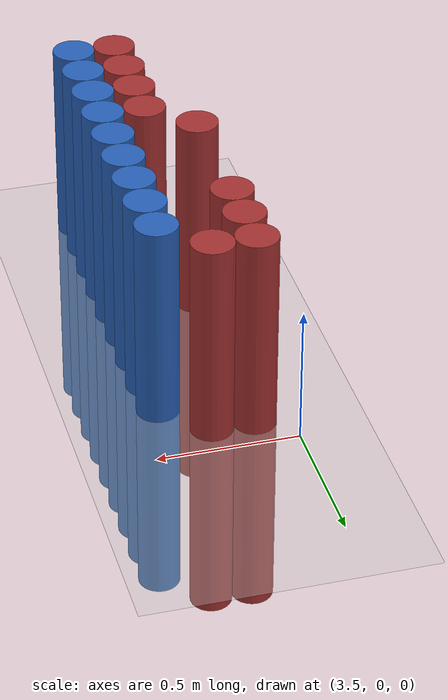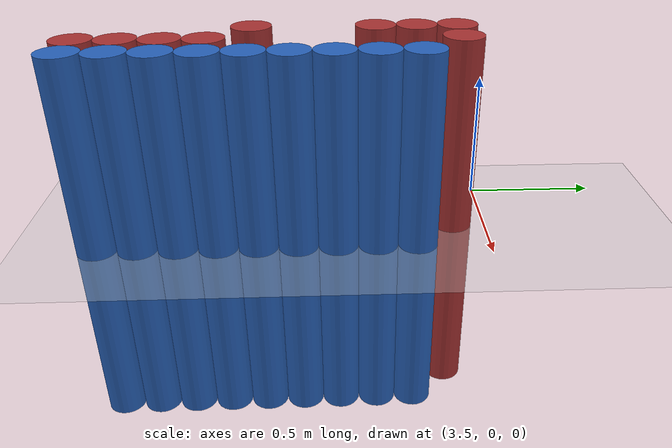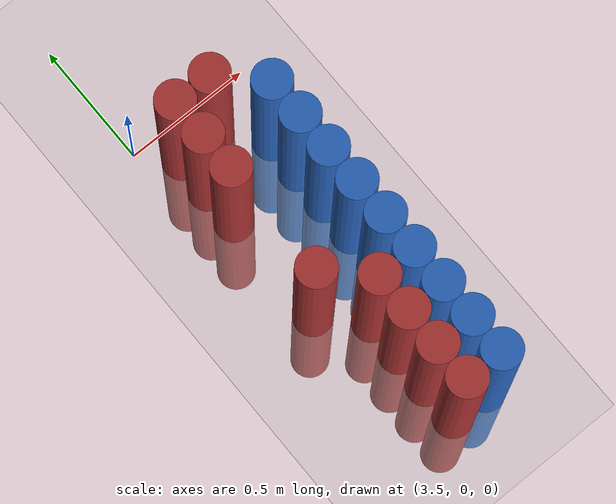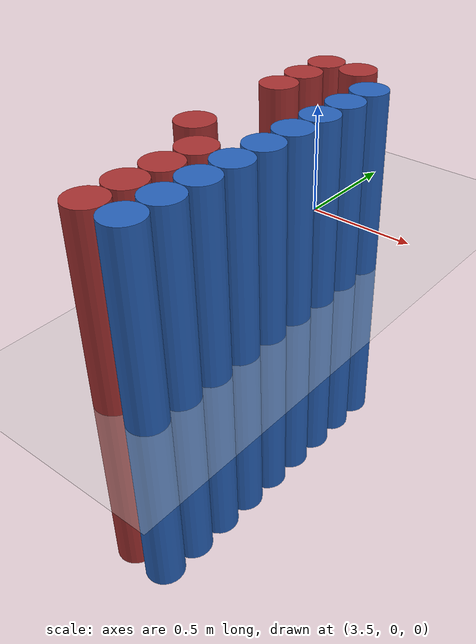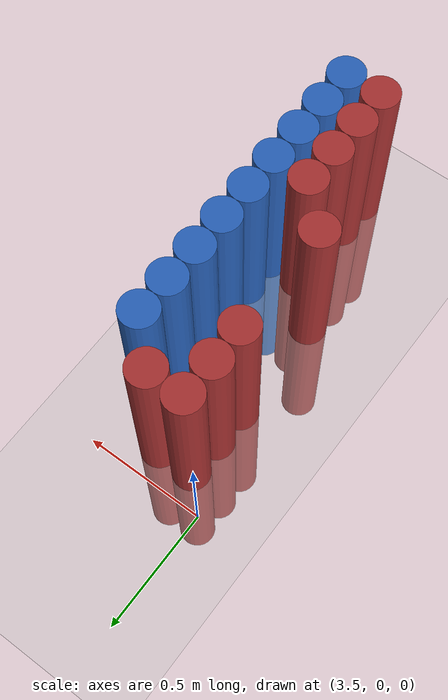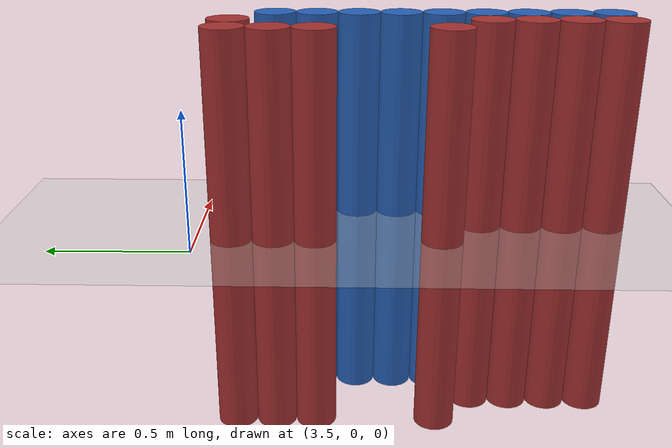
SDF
<sdf version="1.6">
 <world name="default">
  <model name="ground_plane">
   <static>1</static>
   <link name="link">
    <collision name="collision">
     <geometry><plane><normal>0 0 1</normal><size>100 100</size></plane></geometry>
     <surface><friction><ode><mu>100</mu><mu2>50</mu2></ode></friction></surface>
    </collision>
    <visual name="visual">
     <cast_shadows>0</cast_shadows>
     <geometry><plane><normal>0 0 1</normal><size>100 100</size></plane></geometry>
     <material>
      <script><uri>file://media/materials/scripts/gazebo.material</uri><name>Gazebo/Grey</name></script>
     </material>
    </visual>
   </link>
  </model>
  <model name="unit_cylinder_94">
   <static>1</static>
   <pose>3.925000 -1.475000 0.000000 0.000000 0.000000 0.000000</pose>
   <link name="link">
    <inertial>
     <mass>1</mass>
     <inertia><ixx>0.145833</ixx><ixy>0</ixy><ixz>0</ixz><iyy>0.145833</iyy><iyz>0</iyz><izz>0.125</izz></inertia>
    </inertial>
    <collision name="collision">
     <geometry><cylinder><radius>0.075000</radius><length>1.5</length></cylinder></geometry>
    </collision>
    <visual name="visual">
     <geometry><cylinder><radius>0.075000</radius><length>1.5</length></cylinder></geometry>
     <material>
      <ambient>0.152000 0.379000 0.720000 1</ambient>
      <diffuse>0.152000 0.379000 0.720000 1</diffuse>
     </material>
     <material>
      <script><name>Gazebo/Grey</name><uri>file://media/materials/scripts/gazebo.material</uri></script>
     </material>
    </visual>
   </link>
  </model>
  <model name="unit_cylinder_96">
   <static>1</static>
   <pose>3.925000 -1.325000 0.000000 0.000000 0.000000 0.000000</pose>
   <link name="link">
    <inertial>
     <mass>1</mass>
     <inertia><ixx>0.145833</ixx><ixy>0</ixy><ixz>0</ixz><iyy>0.145833</iyy><iyz>0</iyz><izz>0.125</izz></inertia>
    </inertial>
    <collision name="collision">
     <geometry><cylinder><radius>0.075000</radius><length>1.5</length></cylinder></geometry>
    </collision>
    <visual name="visual">
     <geometry><cylinder><radius>0.075000</radius><length>1.5</length></cylinder></geometry>
     <material>
      <ambient>0.152000 0.379000 0.720000 1</ambient>
      <diffuse>0.152000 0.379000 0.720000 1</diffuse>
     </material>
     <material>
      <script><name>Gazebo/Grey</name><uri>file://media/materials/scripts/gazebo.material</uri></script>
     </material>
    </visual>
   </link>
  </model>
  <model name="unit_cylinder_98">
   <static>1</static>
   <pose>3.925000 -1.175000 0.000000 0.000000 0.000000 0.000000</pose>
   <link name="link">
    <inertial>
     <mass>1</mass>
     <inertia><ixx>0.145833</ixx><ixy>0</ixy><ixz>0</ixz><iyy>0.145833</iyy><iyz>0</iyz><izz>0.125</izz></inertia>
    </inertial>
    <collision name="collision">
     <geometry><cylinder><radius>0.075000</radius><length>1.5</length></cylinder></geometry>
    </collision>
    <visual name="visual">
     <geometry><cylinder><radius>0.075000</radius><length>1.5</length></cylinder></geometry>
     <material>
      <ambient>0.152000 0.379000 0.720000 1</ambient>
      <diffuse>0.152000 0.379000 0.720000 1</diffuse>
     </material>
     <material>
      <script><name>Gazebo/Grey</name><uri>file://media/materials/scripts/gazebo.material</uri></script>
     </material>
    </visual>
   </link>
  </model>
  <model name="unit_cylinder_100">
   <static>1</static>
   <pose>3.925000 -1.025000 0.000000 0.000000 0.000000 0.000000</pose>
   <link name="link">
    <inertial>
     <mass>1</mass>
     <inertia><ixx>0.145833</ixx><ixy>0</ixy><ixz>0</ixz><iyy>0.145833</iyy><iyz>0</iyz><izz>0.125</izz></inertia>
    </inertial>
    <collision name="collision">
     <geometry><cylinder><radius>0.075000</radius><length>1.5</length></cylinder></geometry>
    </collision>
    <visual name="visual">
     <geometry><cylinder><radius>0.075000</radius><length>1.5</length></cylinder></geometry>
     <material>
      <ambient>0.152000 0.379000 0.720000 1</ambient>
      <diffuse>0.152000 0.379000 0.720000 1</diffuse>
     </material>
     <material>
      <script><name>Gazebo/Grey</name><uri>file://media/materials/scripts/gazebo.material</uri></script>
     </material>
    </visual>
   </link>
  </model>
  <model name="unit_cylinder_102">
   <static>1</static>
   <pose>3.925000 -0.875000 0.000000 0.000000 0.000000 0.000000</pose>
   <link name="link">
    <inertial>
     <mass>1</mass>
     <inertia><ixx>0.145833</ixx><ixy>0</ixy><ixz>0</ixz><iyy>0.145833</iyy><iyz>0</iyz><izz>0.125</izz></inertia>
    </inertial>
    <collision name="collision">
     <geometry><cylinder><radius>0.075000</radius><length>1.5</length></cylinder></geometry>
    </collision>
    <visual name="visual">
     <geometry><cylinder><radius>0.075000</radius><length>1.5</length></cylinder></geometry>
     <material>
      <ambient>0.152000 0.379000 0.720000 1</ambient>
      <diffuse>0.152000 0.379000 0.720000 1</diffuse>
     </material>
     <material>
      <script><name>Gazebo/Grey</name><uri>file://media/materials/scripts/gazebo.material</uri></script>
     </material>
    </visual>
   </link>
  </model>
  <model name="unit_cylinder_104">
   <static>1</static>
   <pose>3.925000 -0.725000 0.000000 0.000000 0.000000 0.000000</pose>
   <link name="link">
    <inertial>
     <mass>1</mass>
     <inertia><ixx>0.145833</ixx><ixy>0</ixy><ixz>0</ixz><iyy>0.145833</iyy><iyz>0</iyz><izz>0.125</izz></inertia>
    </inertial>
    <collision name="collision">
     <geometry><cylinder><radius>0.075000</radius><length>1.5</length></cylinder></geometry>
    </collision>
    <visual name="visual">
     <geometry><cylinder><radius>0.075000</radius><length>1.5</length></cylinder></geometry>
     <material>
      <ambient>0.152000 0.379000 0.720000 1</ambient>
      <diffuse>0.152000 0.379000 0.720000 1</diffuse>
     </material>
     <material>
      <script><name>Gazebo/Grey</name><uri>file://media/materials/scripts/gazebo.material</uri></script>
     </material>
    </visual>
   </link>
  </model>
  <model name="unit_cylinder_106">
   <static>1</static>
   <pose>3.925000 -0.575000 0.000000 0.000000 0.000000 0.000000</pose>
   <link name="link">
    <inertial>
     <mass>1</mass>
     <inertia><ixx>0.145833</ixx><ixy>0</ixy><ixz>0</ixz><iyy>0.145833</iyy><iyz>0</iyz><izz>0.125</izz></inertia>
    </inertial>
    <collision name="collision">
     <geometry><cylinder><radius>0.075000</radius><length>1.5</length></cylinder></geometry>
    </collision>
    <visual name="visual">
     <geometry><cylinder><radius>0.075000</radius><length>1.5</length></cylinder></geometry>
     <material>
      <ambient>0.152000 0.379000 0.720000 1</ambient>
      <diffuse>0.152000 0.379000 0.720000 1</diffuse>
     </material>
     <material>
      <script><name>Gazebo/Grey</name><uri>file://media/materials/scripts/gazebo.material</uri></script>
     </material>
    </visual>
   </link>
  </model>
  <model name="unit_cylinder_108">
   <static>1</static>
   <pose>3.925000 -0.425000 0.000000 0.000000 0.000000 0.000000</pose>
   <link name="link">
    <inertial>
     <mass>1</mass>
     <inertia><ixx>0.145833</ixx><ixy>0</ixy><ixz>0</ixz><iyy>0.145833</iyy><iyz>0</iyz><izz>0.125</izz></inertia>
    </inertial>
    <collision name="collision">
     <geometry><cylinder><radius>0.075000</radius><length>1.5</length></cylinder></geometry>
    </collision>
    <visual name="visual">
     <geometry><cylinder><radius>0.075000</radius><length>1.5</length></cylinder></geometry>
     <material>
      <ambient>0.152000 0.379000 0.720000 1</ambient>
      <diffuse>0.152000 0.379000 0.720000 1</diffuse>
     </material>
     <material>
      <script><name>Gazebo/Grey</name><uri>file://media/materials/scripts/gazebo.material</uri></script>
     </material>
    </visual>
   </link>
  </model>
  <model name="unit_cylinder_110">
   <static>1</static>
   <pose>3.925000 -0.275000 0.000000 0.000000 0.000000 0.000000</pose>
   <link name="link">
    <inertial>
     <mass>1</mass>
     <inertia><ixx>0.145833</ixx><ixy>0</ixy><ixz>0</ixz><iyy>0.145833</iyy><iyz>0</iyz><izz>0.125</izz></inertia>
    </inertial>
    <collision name="collision">
     <geometry><cylinder><radius>0.075000</radius><length>1.5</length></cylinder></geometry>
    </collision>
    <visual name="visual">
     <geometry><cylinder><radius>0.075000</radius><length>1.5</length></cylinder></geometry>
     <material>
      <ambient>0.152000 0.379000 0.720000 1</ambient>
      <diffuse>0.152000 0.379000 0.720000 1</diffuse>
     </material>
     <material>
      <script><name>Gazebo/Grey</name><uri>file://media/materials/scripts/gazebo.material</uri></script>
     </material>
    </visual>
   </link>
  </model>
  <model name="unit_cylinder_562">
   <static>1</static>
   <pose>3.625000 -0.875000 0.000000 0.000000 0.000000 0.000000</pose>
   <link name="link">
    <inertial>
     <mass>1</mass>
     <inertia><ixx>0.145833</ixx><ixy>0</ixy><ixz>0</ixz><iyy>0.145833</iyy><iyz>0</iyz><izz>0.125</izz></inertia>
    </inertial>
    <collision name="collision">
     <geometry><cylinder><radius>0.075000</radius><length>1.5</length></cylinder></geometry>
    </collision>
    <visual name="visual">
     <geometry><cylinder><radius>0.075000</radius><length>1.5</length></cylinder></geometry>
     <material>
      <ambient>0.648000 0.192000 0.192000 1</ambient>
      <diffuse>0.648000 0.192000 0.192000 1</diffuse>
     </material>
     <material>
      <script><name>Gazebo/Grey</name><uri>file://media/materials/scripts/gazebo.material</uri></script>
     </material>
    </visual>
   </link>
  </model>
  <model name="unit_cylinder_563">
   <static>1</static>
   <pose>3.625000 -0.425000 0.000000 0.000000 0.000000 0.000000</pose>
   <link name="link">
    <inertial>
     <mass>1</mass>
     <inertia><ixx>0.145833</ixx><ixy>0</ixy><ixz>0</ixz><iyy>0.145833</iyy><iyz>0</iyz><izz>0.125</izz></inertia>
    </inertial>
    <collision name="collision">
     <geometry><cylinder><radius>0.075000</radius><length>1.5</length></cylinder></geometry>
    </collision>
    <visual name="visual">
     <geometry><cylinder><radius>0.075000</radius><length>1.5</length></cylinder></geometry>
     <material>
      <ambient>0.648000 0.192000 0.192000 1</ambient>
      <diffuse>0.648000 0.192000 0.192000 1</diffuse>
     </material>
     <material>
      <script><name>Gazebo/Grey</name><uri>file://media/materials/scripts/gazebo.material</uri></script>
     </material>
    </visual>
   </link>
  </model>
  <model name="unit_cylinder_564">
   <static>1</static>
   <pose>3.625000 -0.275000 0.000000 0.000000 0.000000 0.000000</pose>
   <link name="link">
    <inertial>
     <mass>1</mass>
     <inertia><ixx>0.145833</ixx><ixy>0</ixy><ixz>0</ixz><iyy>0.145833</iyy><iyz>0</iyz><izz>0.125</izz></inertia>
    </inertial>
    <collision name="collision">
     <geometry><cylinder><radius>0.075000</radius><length>1.5</length></cylinder></geometry>
    </collision>
    <visual name="visual">
     <geometry><cylinder><radius>0.075000</radius><length>1.5</length></cylinder></geometry>
     <material>
      <ambient>0.648000 0.192000 0.192000 1</ambient>
      <diffuse>0.648000 0.192000 0.192000 1</diffuse>
     </material>
     <material>
      <script><name>Gazebo/Grey</name><uri>file://media/materials/scripts/gazebo.material</uri></script>
     </material>
    </visual>
   </link>
  </model>
  <model name="unit_cylinder_565">
   <static>1</static>
   <pose>3.625000 -0.125000 0.000000 0.000000 0.000000 0.000000</pose>
   <link name="link">
    <inertial>
     <mass>1</mass>
     <inertia><ixx>0.145833</ixx><ixy>0</ixy><ixz>0</ixz><iyy>0.145833</iyy><iyz>0</iyz><izz>0.125</izz></inertia>
    </inertial>
    <collision name="collision">
     <geometry><cylinder><radius>0.075000</radius><length>1.5</length></cylinder></geometry>
    </collision>
    <visual name="visual">
     <geometry><cylinder><radius>0.075000</radius><length>1.5</length></cylinder></geometry>
     <material>
      <ambient>0.648000 0.192000 0.192000 1</ambient>
      <diffuse>0.648000 0.192000 0.192000 1</diffuse>
     </material>
     <material>
      <script><name>Gazebo/Grey</name><uri>file://media/materials/scripts/gazebo.material</uri></script>
     </material>
    </visual>
   </link>
  </model>
  <model name="unit_cylinder_576">
   <static>1</static>
   <pose>3.775000 -1.475000 0.000000 0.000000 0.000000 0.000000</pose>
   <link name="link">
    <inertial>
     <mass>1</mass>
     <inertia><ixx>0.145833</ixx><ixy>0</ixy><ixz>0</ixz><iyy>0.145833</iyy><iyz>0</iyz><izz>0.125</izz></inertia>
    </inertial>
    <collision name="collision">
     <geometry><cylinder><radius>0.075000</radius><length>1.5</length></cylinder></geometry>
    </collision>
    <visual name="visual">
     <geometry><cylinder><radius>0.075000</radius><length>1.5</length></cylinder></geometry>
     <material>
      <ambient>0.648000 0.192000 0.192000 1</ambient>
      <diffuse>0.648000 0.192000 0.192000 1</diffuse>
     </material>
     <material>
      <script><name>Gazebo/Grey</name><uri>file://media/materials/scripts/gazebo.material</uri></script>
     </material>
    </visual>
   </link>
  </model>
  <model name="unit_cylinder_577">
   <static>1</static>
   <pose>3.775000 -1.325000 0.000000 0.000000 0.000000 0.000000</pose>
   <link name="link">
    <inertial>
     <mass>1</mass>
     <inertia><ixx>0.145833</ixx><ixy>0</ixy><ixz>0</ixz><iyy>0.145833</iyy><iyz>0</iyz><izz>0.125</izz></inertia>
    </inertial>
    <collision name="collision">
     <geometry><cylinder><radius>0.075000</radius><length>1.5</length></cylinder></geometry>
    </collision>
    <visual name="visual">
     <geometry><cylinder><radius>0.075000</radius><length>1.5</length></cylinder></geometry>
     <material>
      <ambient>0.648000 0.192000 0.192000 1</ambient>
      <diffuse>0.648000 0.192000 0.192000 1</diffuse>
     </material>
     <material>
      <script><name>Gazebo/Grey</name><uri>file://media/materials/scripts/gazebo.material</uri></script>
     </material>
    </visual>
   </link>
  </model>
  <model name="unit_cylinder_578">
   <static>1</static>
   <pose>3.775000 -1.175000 0.000000 0.000000 0.000000 0.000000</pose>
   <link name="link">
    <inertial>
     <mass>1</mass>
     <inertia><ixx>0.145833</ixx><ixy>0</ixy><ixz>0</ixz><iyy>0.145833</iyy><iyz>0</iyz><izz>0.125</izz></inertia>
    </inertial>
    <collision name="collision">
     <geometry><cylinder><radius>0.075000</radius><length>1.5</length></cylinder></geometry>
    </collision>
    <visual name="visual">
     <geometry><cylinder><radius>0.075000</radius><length>1.5</length></cylinder></geometry>
     <material>
      <ambient>0.648000 0.192000 0.192000 1</ambient>
      <diffuse>0.648000 0.192000 0.192000 1</diffuse>
     </material>
     <material>
      <script><name>Gazebo/Grey</name><uri>file://media/materials/scripts/gazebo.material</uri></script>
     </material>
    </visual>
   </link>
  </model>
  <model name="unit_cylinder_579">
   <static>1</static>
   <pose>3.775000 -1.025000 0.000000 0.000000 0.000000 0.000000</pose>
   <link name="link">
    <inertial>
     <mass>1</mass>
     <inertia><ixx>0.145833</ixx><ixy>0</ixy><ixz>0</ixz><iyy>0.145833</iyy><iyz>0</iyz><izz>0.125</izz></inertia>
    </inertial>
    <collision name="collision">
     <geometry><cylinder><radius>0.075000</radius><length>1.5</length></cylinder></geometry>
    </collision>
    <visual name="visual">
     <geometry><cylinder><radius>0.075000</radius><length>1.5</length></cylinder></geometry>
     <material>
      <ambient>0.648000 0.192000 0.192000 1</ambient>
      <diffuse>0.648000 0.192000 0.192000 1</diffuse>
     </material>
     <material>
      <script><name>Gazebo/Grey</name><uri>file://media/materials/scripts/gazebo.material</uri></script>
     </material>
    </visual>
   </link>
  </model>
  <model name="unit_cylinder_580">
   <static>1</static>
   <pose>3.775000 -0.125000 0.000000 0.000000 0.000000 0.000000</pose>
   <link name="link">
    <inertial>
     <mass>1</mass>
     <inertia><ixx>0.145833</ixx><ixy>0</ixy><ixz>0</ixz><iyy>0.145833</iyy><iyz>0</iyz><izz>0.125</izz></inertia>
    </inertial>
    <collision name="collision">
     <geometry><cylinder><radius>0.075000</radius><length>1.5</length></cylinder></geometry>
    </collision>
    <visual name="visual">
     <geometry><cylinder><radius>0.075000</radius><length>1.5</length></cylinder></geometry>
     <material>
      <ambient>0.648000 0.192000 0.192000 1</ambient>
      <diffuse>0.648000 0.192000 0.192000 1</diffuse>
     </material>
     <material>
      <script><name>Gazebo/Grey</name><uri>file://media/materials/scripts/gazebo.material</uri></script>
     </material>
    </visual>
   </link>
  </model>
  <model name="unit_cylinder_606">
   <static>1</static>
   <pose>3.925000 -1.475000 0.000000 0.000000 0.000000 0.000000</pose>
   <link name="link">
    <inertial>
     <mass>1</mass>
     <inertia><ixx>0.145833</ixx><ixy>0</ixy><ixz>0</ixz><iyy>0.145833</iyy><iyz>0</iyz><izz>0.125</izz></inertia>
    </inertial>
    <collision name="collision">
     <geometry><cylinder><radius>0.075000</radius><length>1.5</length></cylinder></geometry>
    </collision>
    <visual name="visual">
     <geometry><cylinder><radius>0.075000</radius><length>1.5</length></cylinder></geometry>
     <material>
      <ambient>0.152000 0.379000 0.720000 1</ambient>
      <diffuse>0.152000 0.379000 0.720000 1</diffuse>
     </material>
     <material>
      <script><name>Gazebo/Grey</name><uri>file://media/materials/scripts/gazebo.material</uri></script>
     </material>
    </visual>
   </link>
  </model>
  <model name="unit_cylinder_607">
   <static>1</static>
   <pose>3.925000 -1.325000 0.000000 0.000000 0.000000 0.000000</pose>
   <link name="link">
    <inertial>
     <mass>1</mass>
     <inertia><ixx>0.145833</ixx><ixy>0</ixy><ixz>0</ixz><iyy>0.145833</iyy><iyz>0</iyz><izz>0.125</izz></inertia>
    </inertial>
    <collision name="collision">
     <geometry><cylinder><radius>0.075000</radius><length>1.5</length></cylinder></geometry>
    </collision>
    <visual name="visual">
     <geometry><cylinder><radius>0.075000</radius><length>1.5</length></cylinder></geometry>
     <material>
      <ambient>0.152000 0.379000 0.720000 1</ambient>
      <diffuse>0.152000 0.379000 0.720000 1</diffuse>
     </material>
     <material>
      <script><name>Gazebo/Grey</name><uri>file://media/materials/scripts/gazebo.material</uri></script>
     </material>
    </visual>
   </link>
  </model>
  <model name="unit_cylinder_608">
   <static>1</static>
   <pose>3.925000 -1.175000 0.000000 0.000000 0.000000 0.000000</pose>
   <link name="link">
    <inertial>
     <mass>1</mass>
     <inertia><ixx>0.145833</ixx><ixy>0</ixy><ixz>0</ixz><iyy>0.145833</iyy><iyz>0</iyz><izz>0.125</izz></inertia>
    </inertial>
    <collision name="collision">
     <geometry><cylinder><radius>0.075000</radius><length>1.5</length></cylinder></geometry>
    </collision>
    <visual name="visual">
     <geometry><cylinder><radius>0.075000</radius><length>1.5</length></cylinder></geometry>
     <material>
      <ambient>0.152000 0.379000 0.720000 1</ambient>
      <diffuse>0.152000 0.379000 0.720000 1</diffuse>
     </material>
     <material>
      <script><name>Gazebo/Grey</name><uri>file://media/materials/scripts/gazebo.material</uri></script>
     </material>
    </visual>
   </link>
  </model>
  <model name="unit_cylinder_609">
   <static>1</static>
   <pose>3.925000 -1.025000 0.000000 0.000000 0.000000 0.000000</pose>
   <link name="link">
    <inertial>
     <mass>1</mass>
     <inertia><ixx>0.145833</ixx><ixy>0</ixy><ixz>0</ixz><iyy>0.145833</iyy><iyz>0</iyz><izz>0.125</izz></inertia>
    </inertial>
    <collision name="collision">
     <geometry><cylinder><radius>0.075000</radius><length>1.5</length></cylinder></geometry>
    </collision>
    <visual name="visual">
     <geometry><cylinder><radius>0.075000</radius><length>1.5</length></cylinder></geometry>
     <material>
      <ambient>0.152000 0.379000 0.720000 1</ambient>
      <diffuse>0.152000 0.379000 0.720000 1</diffuse>
     </material>
     <material>
      <script><name>Gazebo/Grey</name><uri>file://media/materials/scripts/gazebo.material</uri></script>
     </material>
    </visual>
   </link>
  </model>
  <model name="unit_cylinder_610">
   <static>1</static>
   <pose>3.925000 -0.875000 0.000000 0.000000 0.000000 0.000000</pose>
   <link name="link">
    <inertial>
     <mass>1</mass>
     <inertia><ixx>0.145833</ixx><ixy>0</ixy><ixz>0</ixz><iyy>0.145833</iyy><iyz>0</iyz><izz>0.125</izz></inertia>
    </inertial>
    <collision name="collision">
     <geometry><cylinder><radius>0.075000</radius><length>1.5</length></cylinder></geometry>
    </collision>
    <visual name="visual">
     <geometry><cylinder><radius>0.075000</radius><length>1.5</length></cylinder></geometry>
     <material>
      <ambient>0.152000 0.379000 0.720000 1</ambient>
      <diffuse>0.152000 0.379000 0.720000 1</diffuse>
     </material>
     <material>
      <script><name>Gazebo/Grey</name><uri>file://media/materials/scripts/gazebo.material</uri></script>
     </material>
    </visual>
   </link>
  </model>
  <model name="unit_cylinder_611">
   <static>1</static>
   <pose>3.925000 -0.725000 0.000000 0.000000 0.000000 0.000000</pose>
   <link name="link">
    <inertial>
     <mass>1</mass>
     <inertia><ixx>0.145833</ixx><ixy>0</ixy><ixz>0</ixz><iyy>0.145833</iyy><iyz>0</iyz><izz>0.125</izz></inertia>
    </inertial>
    <collision name="collision">
     <geometry><cylinder><radius>0.075000</radius><length>1.5</length></cylinder></geometry>
    </collision>
    <visual name="visual">
     <geometry><cylinder><radius>0.075000</radius><length>1.5</length></cylinder></geometry>
     <material>
      <ambient>0.152000 0.379000 0.720000 1</ambient>
      <diffuse>0.152000 0.379000 0.720000 1</diffuse>
     </material>
     <material>
      <script><name>Gazebo/Grey</name><uri>file://media/materials/scripts/gazebo.material</uri></script>
     </material>
    </visual>
   </link>
  </model>
  <model name="unit_cylinder_612">
   <static>1</static>
   <pose>3.925000 -0.575000 0.000000 0.000000 0.000000 0.000000</pose>
   <link name="link">
    <inertial>
     <mass>1</mass>
     <inertia><ixx>0.145833</ixx><ixy>0</ixy><ixz>0</ixz><iyy>0.145833</iyy><iyz>0</iyz><izz>0.125</izz></inertia>
    </inertial>
    <collision name="collision">
     <geometry><cylinder><radius>0.075000</radius><length>1.5</length></cylinder></geometry>
    </collision>
    <visual name="visual">
     <geometry><cylinder><radius>0.075000</radius><length>1.5</length></cylinder></geometry>
     <material>
      <ambient>0.152000 0.379000 0.720000 1</ambient>
      <diffuse>0.152000 0.379000 0.720000 1</diffuse>
     </material>
     <material>
      <script><name>Gazebo/Grey</name><uri>file://media/materials/scripts/gazebo.material</uri></script>
     </material>
    </visual>
   </link>
  </model>
  <model name="unit_cylinder_613">
   <static>1</static>
   <pose>3.925000 -0.425000 0.000000 0.000000 0.000000 0.000000</pose>
   <link name="link">
    <inertial>
     <mass>1</mass>
     <inertia><ixx>0.145833</ixx><ixy>0</ixy><ixz>0</ixz><iyy>0.145833</iyy><iyz>0</iyz><izz>0.125</izz></inertia>
    </inertial>
    <collision name="collision">
     <geometry><cylinder><radius>0.075000</radius><length>1.5</length></cylinder></geometry>
    </collision>
    <visual name="visual">
     <geometry><cylinder><radius>0.075000</radius><length>1.5</length></cylinder></geometry>
     <material>
      <ambient>0.152000 0.379000 0.720000 1</ambient>
      <diffuse>0.152000 0.379000 0.720000 1</diffuse>
     </material>
     <material>
      <script><name>Gazebo/Grey</name><uri>file://media/materials/scripts/gazebo.material</uri></script>
     </material>
    </visual>
   </link>
  </model>
  <model name="unit_cylinder_614">
   <static>1</static>
   <pose>3.925000 -0.275000 0.000000 0.000000 0.000000 0.000000</pose>
   <link name="link">
    <inertial>
     <mass>1</mass>
     <inertia><ixx>0.145833</ixx><ixy>0</ixy><ixz>0</ixz><iyy>0.145833</iyy><iyz>0</iyz><izz>0.125</izz></inertia>
    </inertial>
    <collision name="collision">
     <geometry><cylinder><radius>0.075000</radius><length>1.5</length></cylinder></geometry>
    </collision>
    <visual name="visual">
     <geometry><cylinder><radius>0.075000</radius><length>1.5</length></cylinder></geometry>
     <material>
      <ambient>0.152000 0.379000 0.720000 1</ambient>
      <diffuse>0.152000 0.379000 0.720000 1</diffuse>
     </material>
     <material>
      <script><name>Gazebo/Grey</name><uri>file://media/materials/scripts/gazebo.material</uri></script>
     </material>
    </visual>
   </link>
  </model>
 </world>
</sdf>
